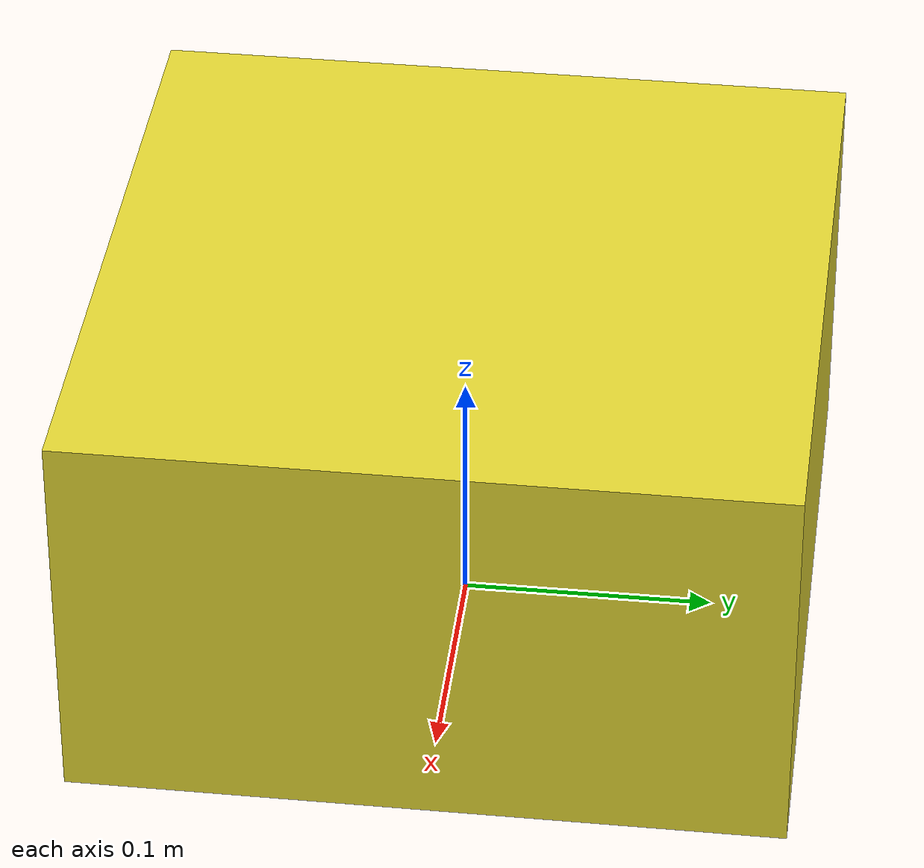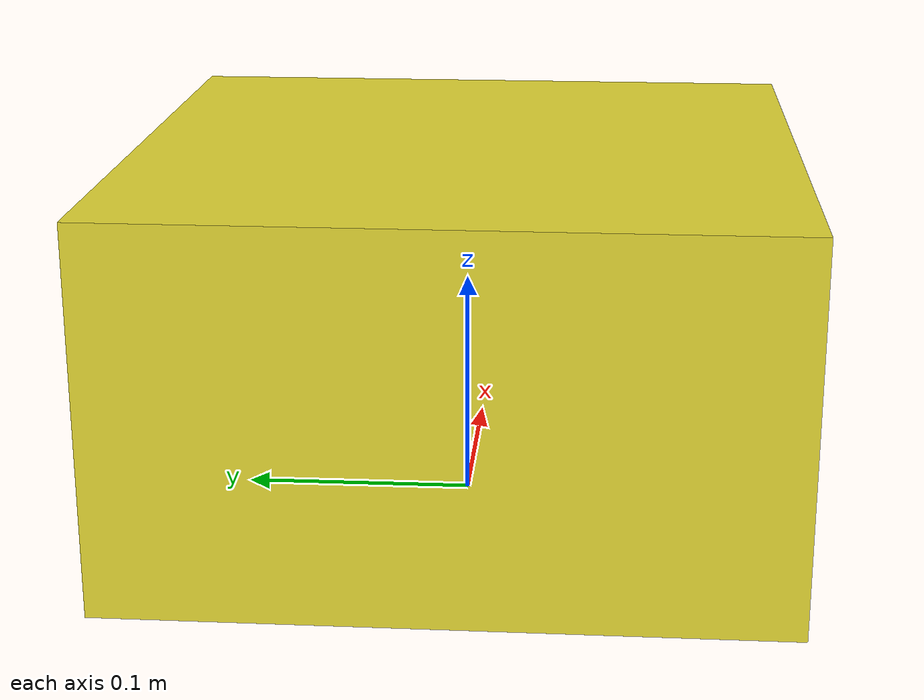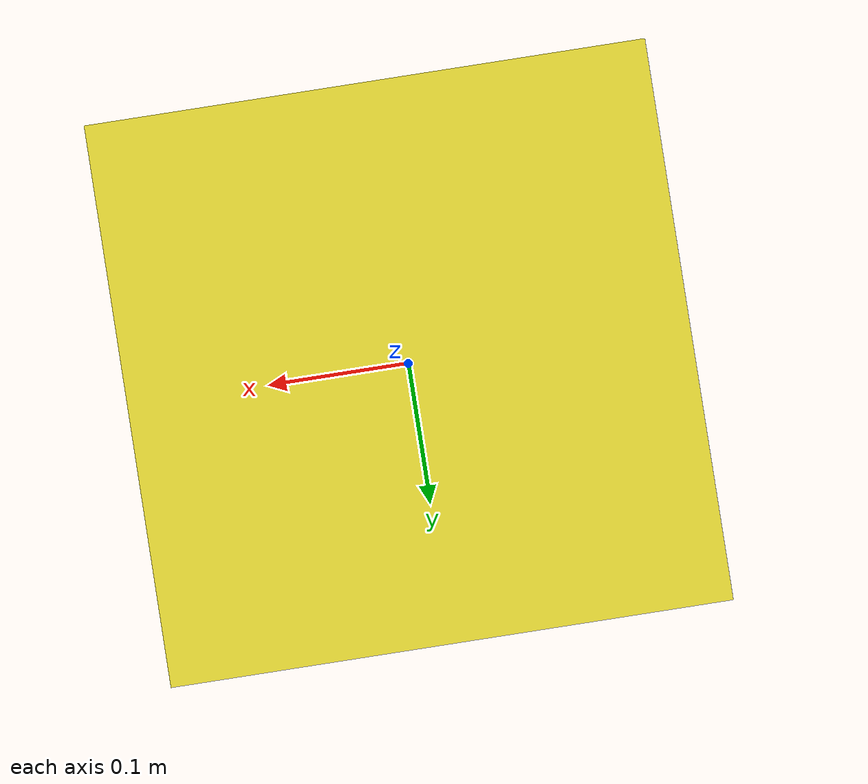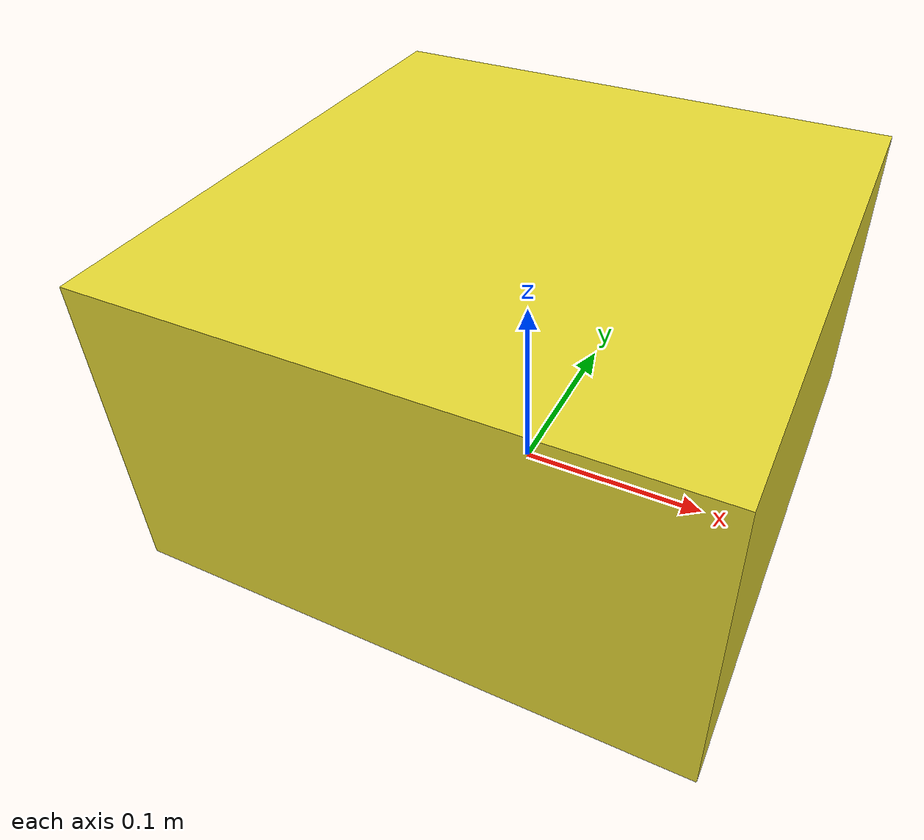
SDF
<?xml version="1.0"?>
<sdf version="1.9">
  <model name="bin_yellow">
    <static>true</static>
    <link name="link">
      <pose>0 0 0.08 0 0 0</pose>
      <collision name="collision">
        <geometry>
          <box>
            <size>0.28 0.28 0.16</size>
          </box>
        </geometry>
      </collision>
      <visual name="visual">
        <geometry>
          <box>
            <size>0.28 0.28 0.16</size>
          </box>
        </geometry>
        <material>
          <ambient>0.75 0.75 0.1 1</ambient>
          <diffuse>0.9 0.85 0.2 1</diffuse>
        </material>
      </visual>
    </link>
    <plugin
      filename="libgz-sim-pose-publisher-system.so"
      name="gz::sim::systems::PosePublisher">
      <publish_link_pose>true</publish_link_pose>
      <use_pose_vector_msg>true</use_pose_vector_msg>
      <update_frequency>100</update_frequency>
    </plugin>
  </model>
</sdf>
